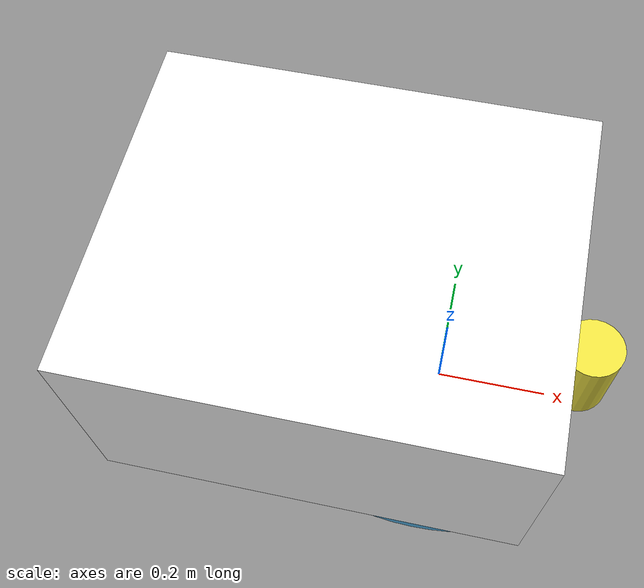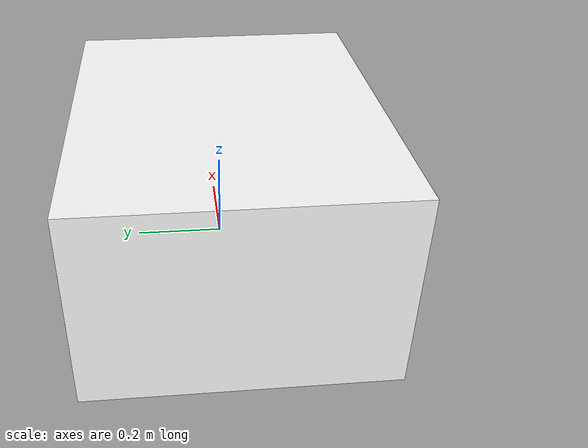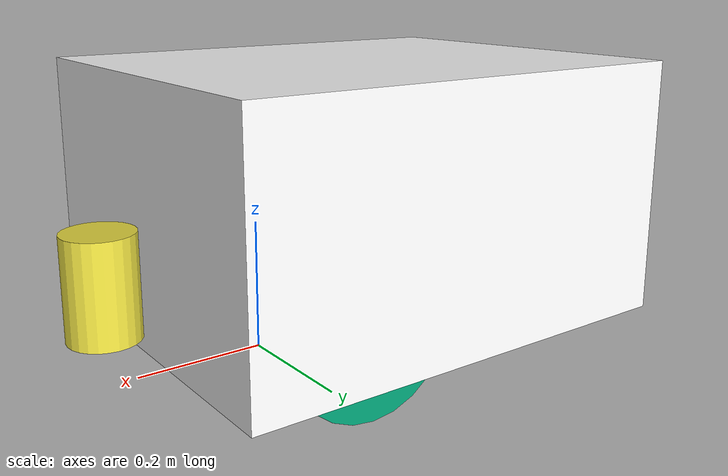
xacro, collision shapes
<?xml version="1.0"?>
<!-- Materials -->
<robot xmlns:xacro="http://www.ros.org/wiki/xacro" name="mp_500">

  <!--GAZEBO REFERENCES -->
  <xacro:include filename="$(find cmr_description)/urdf/base/mp_500_gazebo.xacro" />

  <!-- MATERIALS -->
  <xacro:include filename="$(find cmr_description)/urdf/materials.xacro" />

  <!-- PROPERTIES -->
  <xacro:include filename="$(find cmr_description)/urdf/base/mp_500_properties.xacro" />

  <!-- MACROS -->
  <xacro:include filename="$(find cmr_description)/urdf/macros.xacro" />

	<!--++++++++++++++++++++++++++++++base_link++++++++++++++++++++++++++++++++++++++++++++++++++++-->
	<!--++++++++++++++++++++body++++++++++++++++++++++++++++-->
	<link name="base_link">

		<inertial>
			<mass value="${chassisMass}" /> <!--TODO: Find correct value-->
			<origin xyz="0 0 0.0" rpy="0 0 0"/>
      <box_inertia
				m="${chassisMass}"
				x="${chassisLength}"
				y="${chassisWidth}"
				z="${chassisHeight}"/>
		</inertial>
	    <visual name='body'>
		<origin xyz="0 0 0.001" rpy="0 0 0" />
		<geometry>
		    <mesh filename="package://cmr_description/meshes/base.STL" scale="1 1 1"/>
		</geometry>
		 <material name="White" />
	      </visual>
	      <collision name='body_collision'>
		<origin xyz="-0.183 0.0 0.234" rpy="0 0 0" />
		<geometry>
		  <box size="${chassisLength} ${chassisWidth} ${chassisHeight}"/>
		  <!--cylinder length="0.381" radius="0.2545"/-->
		</geometry>
	      </collision>-->

	<!--+++++++++++++++++++caster_back++++++++++++++++++++++++-->

	     <collision name='caster_back_collision'>
		  	<origin xyz="${casterOffsetX} 0 ${casterRadius-0.01} " rpy="0 0 0" />
		  <geometry>
		    <sphere radius="${casterRadius}"/>
		  </geometry>
    </collision>

	</link>
++++++++wheel_left_link++++++++++++++++++++++++-->
	<link name="wheel_left_link" type="wheel">
	    <inertial>
	      <mass value="${wheelMass}" />
	      <origin xyz="0.0 0.0 0.0" rpy="0 0 0" />
	      <cylinder_inertia
          m="${wheelMass}"
          r="${wheelRadius}"
          h="${wheelWidth}"
          />
	    </inertial>
	    <collision>
	     	<origin xyz="0.0 0.0 0.0" rpy="0 0 0" />
	     	<geometry>
			<cylinder radius="${wheelRadius}" length="${wheelWidth}"/>
	     	</geometry>
	    </collision>
	</link>

	<!--+++++++++++++++++++wheel_left_joint++++++++++++++++++++++++-->
		<joint name="wheel_left_joint" type="revolute">
			<origin xyz="0 -0.2534 0.127" rpy="0 1.57 1.57" />
	    	<axis xyz="0 0 1"/>
	    	<limit effort="1000.0" lower="-1e+16" upper="1e+16" velocity="3.5"/>
	    	<joint_properties damping="0.0" friction="0.0" />
	    	<parent link="base_link" />
	    	<child link="wheel_left_link" />
	    </joint>

	<!--+++++++++++++++++++wheel_right_link++++++++++++++++++++++++-->
	<link name="wheel_right_link" type="wheel">
    <inertial>
      <mass value="${wheelMass}" />
      <origin xyz="0.0 0.0 0.0" rpy="0 0 0" />
      <cylinder_inertia
        m="${wheelMass}"
        r="${wheelRadius}"
        h="${wheelWidth}"
        />
    </inertial>
    <collision>
      <origin xyz="0.0 0.0 0.0" rpy="0 0 0" />
      <geometry>
    <cylinder radius="${wheelRadius}" length="${wheelWidth}"/>
      </geometry>
    </collision>
	</link>

	<!--+++++++++++++++++++wheel_right_joint++++++++++++++++++++++++-->
	<joint name="wheel_right_joint" type="revolute">
	   <origin xyz="0 0.2534 0.127" rpy="0 1.57 1.57" />
	   <axis xyz="0 0 1"/>
	   <limit effort="1000.0" lower="-1e+16" upper="1e+16" velocity="3.5"/>
	   <joint_properties damping="0.0" friction="0.0" />
	   <parent link="base_link" />
	   <child link="wheel_right_link" />
	</joint>

	<!--+++++++++++++++++++laserscanner_front_joint++++++++++++++++++++++++-->
	<joint name="scanner_front_joint" type="fixed">
	  <axis xyz="0 1 0" />
	  <origin xyz="0.244 0 0.149" rpy="3.14 0 0" />
	  <parent link="base_link"/>
	  <child link="scanner_front_link"/>
	</joint>

	<!--+++++++++++++++++++laserscanner_front_link++++++++++++++++++++++++-->
	<link name="scanner_front_link" type="laser">
		<inertial>
			<mass value="0.001" />
			<origin xyz="0 0 0.0" rpy="0 0 0" />
			<inertia ixx="0.0001" ixy="0" ixz="0" iyy="0.000001" iyz="0" izz="0.0001" />
	  	</inertial>
	  	<collision>
			<origin xyz="0 0 0" rpy="0 0 0" />
			<geometry>
				<cylinder length="0.154" radius="0.053" />
			</geometry>
		  </collision>
	</link>

</robot>

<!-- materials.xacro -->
<robot name="mpo_500" xmlns:xacro="http://www.ros.org/wiki/xacro">

  <material name="Neobotix/Black">
    <color rgba="0.0 0.0 0.0 1.0"/>
  </material>

  <material name="Neobotix/Blue">
    <color rgba="0.0 0.0 0.8 1.0"/>
  </material>

  <material name="Neobotix/Green">
    <color rgba="0.0 0.8 0.0 1.0"/>
  </material>

  <material name="Neobotix/Grey">
    <color rgba="0.7 0.7 0.7 1.0"/>
  </material>

  <material name="Neobotix/Grey2">
    <color rgba="0.9 0.9 0.9 1.0"/>
  </material>

  <material name="Neobotix/Red">
    <color rgba="0.8 0.0 0.0 1.0"/>
  </material>

  <material name="White">
    <color rgba="1.0 1.0 1.0 1.0"/>
  </material>

  <material name="Neobotix/Yellow">
    <color rgba="1.0 1.0 0 10"/>
  </material>
</robot>

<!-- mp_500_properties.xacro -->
<robot xmlns:xacro="http://www.ros.org/wiki/xacro">

	<!-- Constants -->
	<xacro:property name="PI" value="3.1415926535897931"/>

	<!-- Chassis properties -->
	<xacro:property name="chassisHeight" value="0.4"/>
	<xacro:property name="chassisLength" value="0.734"/>
	<xacro:property name="chassisWidth" value="0.600"/>
	<xacro:property name="chassisMass" value="70"/>d

	<!-- Caster wheel properties -->
	<xacro:property name="casterRadius" value="0.021"/>
	<xacro:property name="casterMass" value="0.1"/>
	<xacro:property name="casterOffsetX" value="-0.47"/>

	<!-- Differential-drive wheels properties -->
	<xacro:property name="wheelWidth" value="0.085"/>
	<xacro:property name="wheelRadius" value="0.13"/>
	<xacro:property name="wheelMass" value="5.5"/>

	<!-- S300 laser properties -->

</robot>

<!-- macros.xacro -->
<!--
	definitions of some macros for easier description of the robot
-->

<robot xmlns:xacro="http://www.ros.org/wiki/xacro">

  <xacro:macro name="cylinder_inertia" params="m r h">

    <inertia
          ixx="${m*(3*r*r+h*h)/12}"
    			ixy = "0"
    			ixz = "0"
    			iyy="${m*(3*r*r+h*h)/12}"
    			iyz = "0"
    			izz="${m*r*r/2}"
    />
  </xacro:macro>

  <xacro:macro name="box_inertia" params="m x y z">

    <inertia
          ixx="${m*(y*y+z*z)/12}"
    			ixy = "0"
    			ixz = "0"
    			iyy="${m*(x*x+z*z)/12}"
    			iyz = "0"
    			izz="${m*(x*x+z*z)/12}"
    />
  </xacro:macro>

  <xacro:macro name="sphere_inertia" params="m r">

    <inertia
          ixx="${2*m*r*r/5}"
    			ixy = "0"
    			ixz = "0"
    			iyy="${2*m*r*r/5}"
    			iyz = "0"
    			izz="${2*m*r*r/5}"
    />
  </xacro:macro>

  <xacro:macro name="wheel" params="lr tY">

    <link name="${lr}_wheel">
      <collision>
        <origin xyz="0 0 0"
        		rpy="${-tY*PI/2} 0 0" />
        <geometry>
          <cylinder
            length="${wheelWidth}"
            radius="${wheelRadius}"/>
        </geometry>
      </collision>

      <visual>
        <origin xyz="0 0 0"
        		rpy="${-tY*PI/2} 0 0" />
        <geometry>
          <mesh filename="package://my_robot_description/meshes/${lr}_wheel.dae" />
        </geometry>
      </visual>

      <inertial>
        <origin xyz="0 0 0"
        		rpy="${-tY*PI/2} 0 0" />
        <mass value="${wheelMass}"/>
        <cylinder_inertia
          m="${wheelMass}"
          r="${wheelRadius}"
          h="${wheelWidth}"/>
      </inertial>
    </link>

    <gazebo reference="${lr}_wheel">
      <mu1 value="1.0"/>
      <mu2 value="1.0"/>
      <kp  value="10000000.0" />

      <kd>100.0</kd>
      <minDepth>0.001</minDepth>
      <maxVel>1.0</maxVel>

      <material>Gazebo/FlatBlack</material>
    </gazebo>

    <joint name="${lr}_wheel_hinge" type="continuous">
      <parent link="chassis"/>
      <child link="${lr}_wheel"/>
      <origin
        xyz = "0 ${-tY*(wheelOffsetY+wheelWidth)} ${wheelRadius}"
        rpy = "0 0 0" />
      <axis xyz="0 1 0"
      		  rpy="0 0 0" />
      <!--limit effort="100" velocity="10"/-->
      <limit effort="0.0" velocity="0.0"/>
      <joint_properties damping="0.0" friction="0.0"/>
    </joint>

<!--
  http://gazebosim.org/tutorials/?tut=ros_control
-->

    <transmission name="${lr}_trans">
      <type>transmission_interface/SimpleTransmission</type>
      <joint name="${lr}_wheel_hinge">
        <hardwareInterface>hardware_interface/EffortJointInterface</hardwareInterface>
      </joint>
      <actuator name="${lr}Motor">
        <hardwareInterface>hardware_interface/EffortJointInterface</hardwareInterface>
        <mechanicalReduction>10</mechanicalReduction>
      </actuator>
    </transmission>

  </xacro:macro>

</robot>
